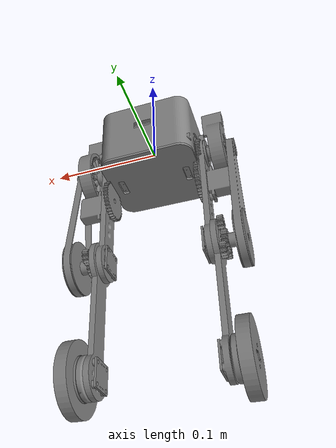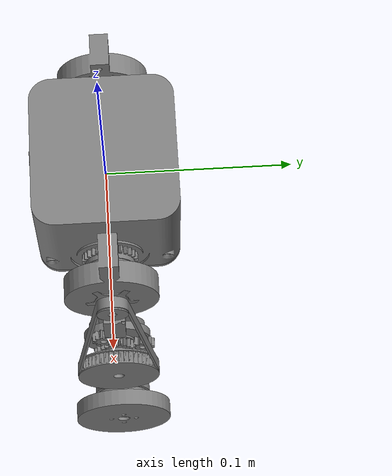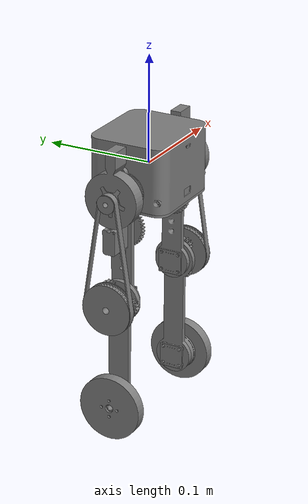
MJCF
<mujoco model="ria">
  <compiler angle="radian" eulerseq="XYZ" meshdir="build/stl" />
  <default>
    <geom type="mesh" density="700" />
    <mesh scale="0.001 0.001 0.001" inertia="exact" />
  </default>
  <asset>
    <mesh file="head_top.stl" />
    <mesh file="head_bottom.stl" />
    <mesh file="head_tray.stl" />
    <mesh file="battery_shoe.stl" />
    <mesh file="tray_spacer_0.stl" />
    <mesh file="tray_spacer_1.stl" />
    <mesh file="tray_spacer_2.stl" />
    <mesh file="tray_spacer_3.stl" />
    <mesh file="simplefocmini_dual_0.stl" inertia="convex" />
    <mesh file="simplefocmini_dual_1.stl" inertia="convex" />
    <mesh file="tca9548a_2.stl" inertia="convex" />
    <mesh file="mp1584_3.stl" inertia="convex" />
    <mesh file="xt60h_m_4.stl" inertia="convex" />
    <mesh file="tattu_lipo_5.stl" inertia="convex" />
    <mesh file="pipico_6.stl" inertia="convex" />
    <mesh file="mpu6050_7.stl" inertia="convex" />
    <mesh file="upper_leg.stl" />
    <mesh file="pinion.stl" />
    <mesh file="sprocket_upper.stl" />
    <mesh file="belt.stl" inertia="convex" />
    <mesh file="ring.stl" />
    <mesh file="sun.stl" />
    <mesh file="pulley.stl" />
    <mesh file="magnet_knee.stl" inertia="convex" />
    <mesh file="5010_body_0.stl" inertia="convex" />
    <mesh file="5010_rotor_1.stl" inertia="convex" />
    <mesh file="sg90_body_2.stl" inertia="convex" />
    <mesh file="as5600_4.stl" inertia="convex" />
    <mesh file="lower_leg.stl" />
    <mesh file="planet_0.stl" />
    <mesh file="planet_1.stl" />
    <mesh file="planet_2.stl" />
    <mesh file="magnet_ankle.stl" inertia="convex" />
    <mesh file="gbm2804_3.stl" inertia="convex" />
    <mesh file="as5600_5.stl" inertia="convex" />
    <mesh file="wheel.stl" />
  </asset>
  <worldbody>
    <body name="head">
      <geom mesh="head_top" />
      <geom mesh="head_bottom" />
      <geom mesh="head_tray" />
      <geom mesh="battery_shoe" />
      <geom mesh="tray_spacer_0" />
      <geom mesh="tray_spacer_1" />
      <geom mesh="tray_spacer_2" />
      <geom mesh="tray_spacer_3" />
      <geom mesh="simplefocmini_dual_0" mass="0.006" />
      <geom mesh="simplefocmini_dual_1" mass="0.006" />
      <geom mesh="tca9548a_2" mass="0.003" />
      <geom mesh="mp1584_3" mass="0.003" />
      <geom mesh="xt60h_m_4" mass="0.004" />
      <geom mesh="tattu_lipo_5" mass="0.15" />
      <geom mesh="pipico_6" mass="0.005" />
      <geom mesh="mpu6050_7" mass="0.002" />
      <body name="upper_leg_r" pos="0.0441 0 -0.0128" euler="1.5707963267948966 0 1.5707963267948966">
        <joint name="hip_r" range="-1.9 1.9" actuatorfrcrange="-0.25 0.25" />
        <geom mesh="upper_leg" />
        <geom mesh="pinion" />
        <geom mesh="sprocket_upper" />
        <geom mesh="belt" mass="0.008" />
        <geom mesh="ring" />
        <geom mesh="sun" />
        <geom mesh="pulley" />
        <geom mesh="magnet_knee" mass="0.001" />
        <geom mesh="5010_body_0" mass="0.05" />
        <geom mesh="5010_rotor_1" mass="0.05" />
        <geom mesh="sg90_body_2" mass="0.009" />
        <geom mesh="as5600_4" mass="0.002" />
        <body name="lower_leg_r" pos="0 -0.1 0">
          <joint name="knee_r" range="-2.6 2.6" actuatorfrcrange="-3 3" />
          <geom mesh="lower_leg" />
          <geom mesh="planet_0" />
          <geom mesh="planet_1" />
          <geom mesh="planet_2" />
          <geom mesh="magnet_ankle" mass="0.001" />
          <geom mesh="gbm2804_3" mass="0.042" />
          <geom mesh="as5600_5" mass="0.002" />
          <body name="wheel_r" pos="0 -0.1 0.02235">
            <joint name="wheel_r" actuatorfrcrange="-0.3 0.3" />
            <geom mesh="wheel" />
          </body>
        </body>
      </body>
      <body name="upper_leg_l" pos="-0.0441 0 -0.0128" euler="1.5707963267948966 0 -1.5707963267948966">
        <joint name="hip_l" range="-1.9 1.9" actuatorfrcrange="-0.25 0.25" />
        <geom mesh="upper_leg" />
        <geom mesh="pinion" />
        <geom mesh="sprocket_upper" />
        <geom mesh="belt" mass="0.008" />
        <geom mesh="ring" />
        <geom mesh="sun" />
        <geom mesh="pulley" />
        <geom mesh="magnet_knee" mass="0.001" />
        <geom mesh="5010_body_0" mass="0.05" />
        <geom mesh="5010_rotor_1" mass="0.05" />
        <geom mesh="sg90_body_2" mass="0.009" />
        <geom mesh="as5600_4" mass="0.002" />
        <body name="lower_leg_l" pos="0 -0.1 0">
          <joint name="knee_l" range="-2.6 2.6" actuatorfrcrange="-3 3" />
          <geom mesh="lower_leg" />
          <geom mesh="planet_0" />
          <geom mesh="planet_1" />
          <geom mesh="planet_2" />
          <geom mesh="magnet_ankle" mass="0.001" />
          <geom mesh="gbm2804_3" mass="0.042" />
          <geom mesh="as5600_5" mass="0.002" />
          <body name="wheel_l" pos="0 -0.1 0.02235">
            <joint name="wheel_l" actuatorfrcrange="-0.3 0.3" />
            <geom mesh="wheel" />
          </body>
        </body>
      </body>
    </body>
  </worldbody>
</mujoco>
